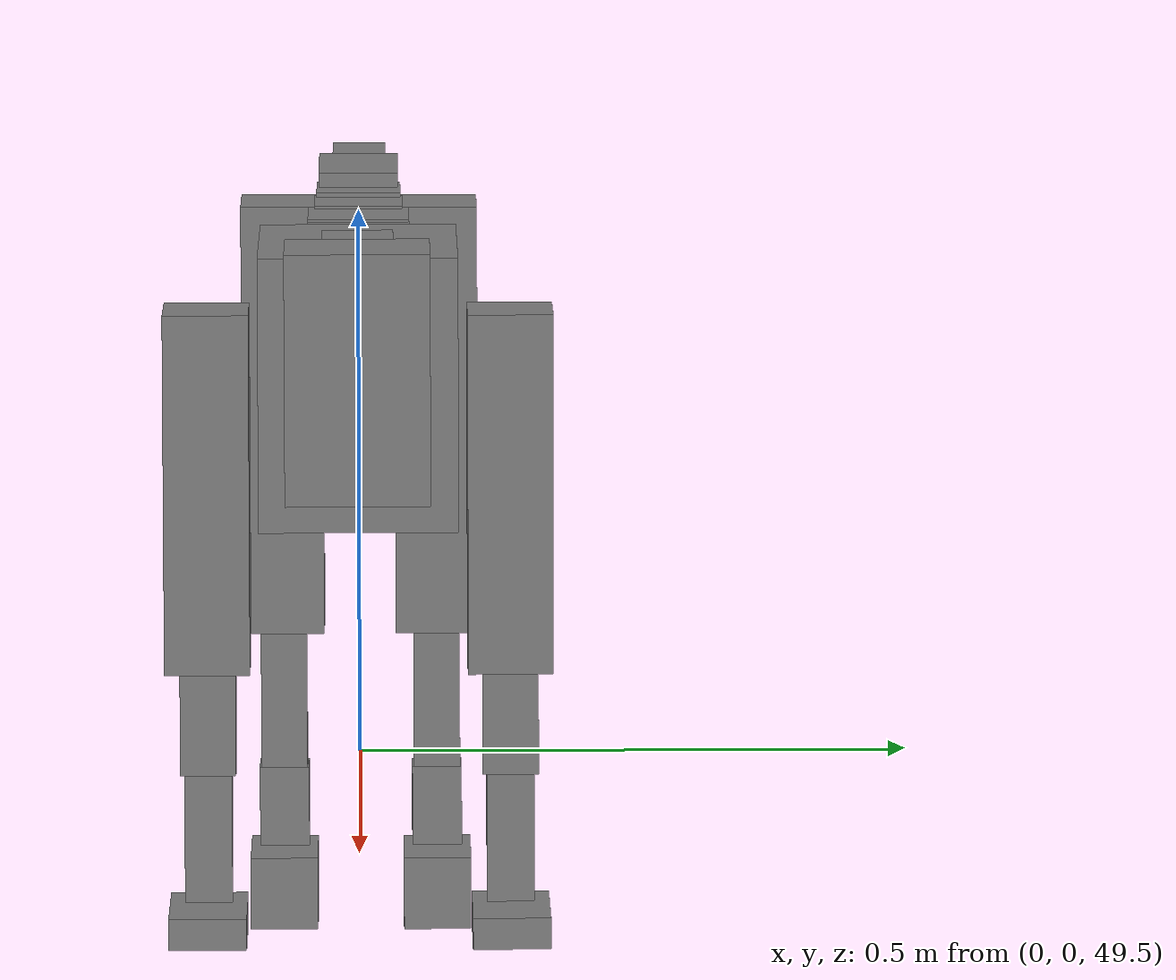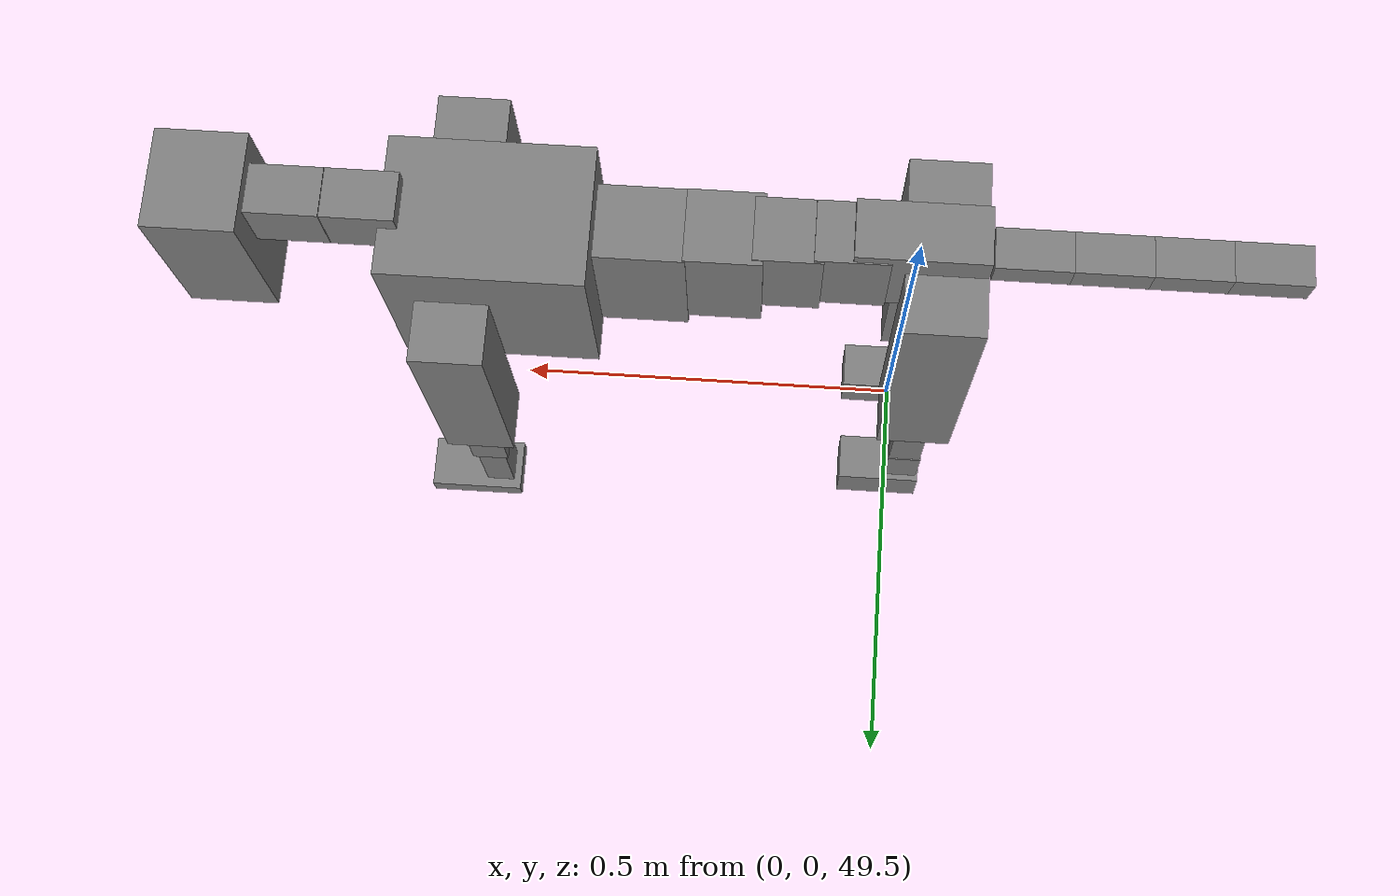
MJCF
<mujoco model="dog">

    <default>
        <joint armature="0.02" stiffness="1" damping="0.2" limited="true"/>
        <geom condim="3" friction="1 0.05 0.05" margin="0.01"/>
        <motor ctrllimited="true" ctrlrange="-1.0 1.0" forcelimited="true" gear="50"/>
    </default>

    <compiler inertiafromgeom="true" angle="radian"/>

    <option timestep="0.016" iterations="50" tolerance="1e-10" solver="Newton" jacobian="dense" cone="pyramidal"/>

    <size nconmax="20000" njmax="60000" nstack="5000000"/>
    <visual>
        <map force="0.1" zfar="30"/>
        <rgba haze="0.15 0.25 0.35 1"/>
        <quality shadowsize="2048"/>
        <global offwidth="800" offheight="800"/>
    </visual>

    <asset>
        <texture type="skybox" builtin="gradient" rgb1="0.3 0.5 0.7" rgb2="0 0 0" width="512" height="512"/>
        <texture name="texplane" type="2d" builtin="checker" rgb1=".2 .3 .4" rgb2=".1 0.15 0.2" width="512" height="512"
                 mark="cross" markrgb=".8 .8 .8"/>
        <texture name="texgeom" type="cube" builtin="flat" mark="cross" width="127" height="1278" rgb1="0.8 0.6 0.4"
                 rgb2="0.8 0.6 0.4" markrgb="1 1 1" random="0.01"/>

        <material name="matplane" reflectance="0.3" texture="texplane" texrepeat="1 1" texuniform="true"/>
        <material name="matgeom" texture="texgeom" texuniform="true" rgba="0.8 0.6 .4 1"/>
    </asset>

    <worldbody>
        <geom name="floor" pos="0 0 0" size="0 0 .25" type="plane" material="matplane" condim="3"/>

        <light directional="false" diffuse=".2 .2 .2" specular="0 0 0" pos="0 0 5" dir="0 0 -1" castshadow="false"/>
        <light mode="targetbodycom" target="torso" directional="false" diffuse=".8 .8 .8" specular="0.3 0.3 0.3"
               pos="0 0 4.0" dir="0 0 -1"/>

        <body name="root" pos="0 0 50">
            <freejoint name="root_1"/>
            <geom type="box" pos="0 0 -0.02" size="0.0774  0.0358  0.063" density="2030"/>

            <body name="spine1" pos="0.054 0 0">
                <joint name="spine1_y" axis="0 1 0" range="0 0.7" limited="true"/>
                <geom type="box" pos="0.02375 0 -0.03" size="0.04375  0.0375  0.05985" density="2030"/>

                <body name="spine2" pos="0.0612 0 0">
                    <joint name="spine2_y" axis="0 1 0" range="-0.15 0.15" limited="true"/>
                    <geom type="box" pos="0.03555  0  -0.04" size="0.04055  0.039  0.06615" density="2030"/>

                    <body name="spine3" pos="0.0730 0 0">
                        <joint name="spine3_y" axis="0 1 0" range="-0.15 0.15" limited="true"/>
                        <geom type="box" pos="0.03555  0  -0.057" size="0.04555  0.0445  0.081" density="2030"/>

                        <body name="spine4" pos="0.0780 0 0">
                            <joint name="spine4_y" axis="0 1 0" range="-0.15 0.15" limited="true"/>
                            <geom type="box" pos="0.05265  0  -0.07" size="0.05265  0.045  0.09135" density="2030"/>

                            <body name="torso" pos="0.1082 0 0">
                                <joint name="torso_y" axis="0 1 0" range="-0.15 0.15" limited="true"/>
                                <geom type="box" pos="0.11925  0  -0.085" size="0.11925  0.085  0.11745"
                                      density="2030"/>

                                <body name="neck1" pos="0.2160  0   0.0180">
                                    <joint name="neck1_y" axis="0 1 0" range="-1.2  -1" limited="true"/>
                                    <geom type="box" pos="0.0423  0  0" size="0.0423  0.03  0.036" density="2325"/>

                                    <body name="neck2" pos="0.0853  0  0">
                                        <joint name="neck2_y" axis="0 1 0" range="0.1  0" limited="true"/>
                                        <geom type="box" pos="0.0423  0  0" size="0.0423  0.03  0.036" density="2325"/>

                                        <body name="head" pos="0.0853  0  0">
                                            <joint name="head_y" axis="0 1 0" range="-0.3  -0.2" limited="true"/>
                                            <geom type="box" pos="0.0531  0  -0.055" size="0.0531  0.06  0.1044"
                                                  density="4030"/>

                                        </body>
                                    </body>
                                </body>

                                <body name="front_shoulder" pos="0.156  0   -0.0480">
                                    <joint name="front_shoulder_y" axis="0 1 0" range="-1 1.5" limited="true"/>
                                    <geom type="box" pos="0 0.13 -0.1285" size="0.0428  0.0366  0.1552" density="1158"/>
                                    <geom type="box" pos="0 -0.13 -0.1285" size="0.0428  0.0366  0.1552"
                                          density="1158"/>

                                    <body name="front_elbow" pos="0  0  -0.2571">
                                        <joint name="front_elbow_y" axis="0 1 0" range="-2 0" limited="true"/>
                                        <geom type="box" pos="0 0.13 -0.0586" size="0.0233  0.0239  0.0586"
                                              density="1081"/>
                                        <geom type="box" pos="0 -0.13 -0.0586" size="0.0233  0.0239  0.0586"
                                              density="1081"/>

                                        <body name="front_wrist" pos="0  0  -0.1173">
                                            <joint name="front_wrist_y" axis="0 1 0" range="-0.2 0" limited="true"/>
                                            <geom type="box" pos="0 0.13 -0.0633" size="0.0183  0.0204  0.0764"
                                                  density="1664"/>
                                            <geom type="box" pos="0 -0.13 -0.0633" size="0.0183  0.0204  0.0764"
                                                  density="1664"/>

                                            <body name="front_finger_end" pos="0  0  -0.1265">
                                                <joint name="front_finger_y" axis="0 1 0" range="-0.4 1"
                                                       limited="true"/>
                                                <geom type="box" pos="0.0333  0.13  0.0014"
                                                      size="0.0610  0.0333  0.0136" density="1515"/>
                                                <geom type="box" pos="0.0333  -0.13  0.0014"
                                                      size="0.0610  0.0333  0.0136" density="1515"/>

                                            </body>

                                        </body>
                                    </body>
                                </body>

                            </body>
                        </body>
                    </body>
                </body>
            </body>

            <body name="back_hip" pos="-0.03 0 -0.018">
                <joint name="back_hip_y" axis="0 1 0" range="-1.5 0.3" limited="true"/>
                <geom type="box" pos="0 0.07 -0.1735" size="0.0475  0.0373  0.1963" density="1154"/>
                <geom type="box" pos="0 -0.07 -0.1735" size="0.0475  0.0373  0.1963" density="1154"/>

                <body name="back_knee" pos="0  0  -0.3471">
                    <joint name="back_knee_y" axis="0 1 0" range="0 2.8" limited="true"/>
                    <geom type="box" pos="0 0.07 -0.0812" size="0.0214  0.0211  0.0968" density="1227"/>
                    <geom type="box" pos="0 -0.07 -0.0812" size="0.0214  0.0211  0.0968" density="1227"/>

                    <body name="back_ankle" pos="0  0  -0.1625">
                        <joint name="back_ankle_y" axis="0 1 0" range="-2.2 0" limited="true"/>
                        <geom type="box" pos="0 0.07 -0.0383" size="0.0226  0.0226  0.0495" density="1284"/>
                        <geom type="box" pos="0 -0.07 -0.0383" size="0.0226  0.0226  0.0495" density="1284"/>

                        <body name="back_toe_end" pos="0  0  -0.0766">
                            <joint name="back_toe_y" axis="0 1 0" range="-0.4 1" limited="true"/>
                            <geom type="box" pos="0.0306  0.07  -0.0182" size="0.0560  0.0306  0.0332" density="1515"/>
                            <geom type="box" pos="0.0306  -0.07  -0.0182" size="0.0560  0.0306  0.0332" density="1515"/>

                        </body>
                    </body>
                </body>
            </body>

            <body name="tail1" pos="-0.074 0 -0.006">
                <joint name="tail1_y" axis="0 1 0" range="-0.2 0.2" limited="true"/>
                <geom type="box" pos="-0.0536  0  0" size="0.045  0.025  0.0175" density="1587"/>

                <body name="tail2" pos="-0.09 0 0">
                    <joint name="tail2_y" axis="0 1 0" range="-0.2 0.2" limited="true"/>
                    <geom type="box" pos="-0.0536  0  0" size="0.045  0.025  0.0175" density="1587"/>

                    <body name="tail3" pos="-0.09 0 0">
                        <joint name="tail3_y" axis="0 1 0" range="-0.2 0.2" limited="true"/>
                        <geom type="box" pos="-0.0536  0  0" size="0.045  0.025  0.0175" density="1587"/>

                        <body name="tail4" pos="-0.09 0 0">
                            <joint name="tail4_y" axis="0 1 0" range="-0.2 0.2" limited="true"/>
                            <geom type="box" pos="-0.0536  0  0" size="0.045  0.025  0.0175" density="1587"/>

                        </body>
                    </body>
                </body>
            </body>
        </body>
    </worldbody>

    <actuator>
        <motor joint="spine1_y" forcerange="-150 150     "/>
        <motor joint="spine2_y" forcerange="-150 150     "/>
        <motor joint="spine3_y" forcerange="-150 150     "/>
        <motor joint="spine4_y" forcerange="-150 150     "/>
        <motor joint="torso_y" forcerange="-150 150     "/>
        <motor joint="neck1_y" forcerange="-100 100       "/>
        <motor joint="neck2_y" forcerange="-100 100       "/>
        <motor joint="head_y" forcerange="-150 150       "/>
        <motor joint="front_shoulder_y" forcerange="-193.12 150.70"/>
        <motor joint="front_elbow_y" forcerange="-125.23 148.27"/>
        <motor joint="front_wrist_y" forcerange="-55.57 107.46"/>
        <motor joint="front_finger_y" forcerange="-62.87 74.62"/>
        <motor joint="back_hip_y" forcerange="-307.87 388.91"/>
        <motor joint="back_knee_y" forcerange="-238.36 268.51"/>
        <motor joint="back_angle_y" forcerange="-159.52 102.72"/>
        <motor joint="back_toe_y" forcerange="-24.86 139.63"/>
        <motor joint="tail1_y" forcerange="-50 50     "/>
        <motor joint="tail2_y" forcerange="-50 50     "/>
        <motor joint="tail3_y" forcerange="-50 50     "/>
        <motor joint="tail4_y" forcerange="-50 50     "/>
    </actuator>
</mujoco>
